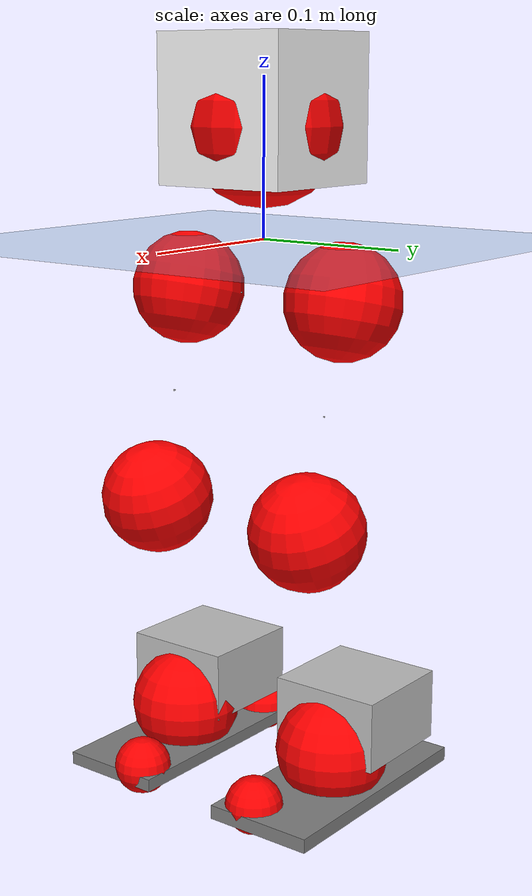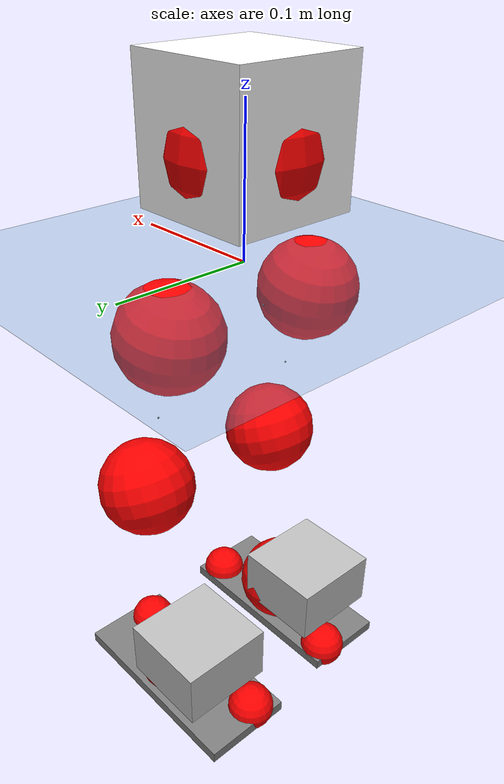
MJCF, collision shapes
<mujoco model="pi_12dof_release_v1">
  <compiler angle="radian" assetdir="assets" balanceinertia="true" inertiafromgeom="false"/>

  <option timestep="0.005" density="1.2" viscosity="2e-05"/>

  <size nkey="1"/>

  <visual>
    <quality shadowsize="8192"/>
    <map shadowclip="0.5"/>
  </visual>

  <default>
    <default class="/">
      <joint armature="0.01" damping="0.01" frictionloss="0.01"/>
      <geom contype="0" conaffinity="0" group="1" solref="-1000 -80"/>
      <site size="0.01 0.005 0.005" group="5"/>
      <general forcelimited="true" biastype="affine" gainprm="20" biasprm="0 -20 -0.5"/>
      <default class="foot">
        <geom size="0.0845 0.036 0.005" type="box" condim="6" group="4" priority="1" friction="0.9 0.2 0.2" solimp="0.015 1 0.005"/>
      </default>
      <default class="reward_collision_sphere">
        <geom group="5" rgba="1 0 0 1"/>
      </default>
    </default>
  </default>

  <asset>
    <texture type="skybox" colorspace="auto" name="//unnamed_texture_0" builtin="gradient" rgb1="0.95 0.95 0.95" rgb2="0.95 0.95 0.95" width="100" height="600"/>
    <texture type="2d" colorspace="auto" name="texplane" builtin="checker" rgb1="0.345 0.575 0.748" rgb2="0.345 0.575 0.748" markrgb="1 1 1" width="512" height="512"/>
    <material name="MatPlane" class="/" texture="texplane" texuniform="true" texrepeat="2 2" specular="0.9"/>
    <mesh name="baselink_1" class="/" file="baselink_1.STL"/>
    <mesh name="r_hip_pitch_link" class="/" file="r_hip_pitch_link.STL"/>
    <mesh name="r_hip_roll_link" class="/" file="r_hip_roll_link.STL"/>
    <mesh name="r_thigh_link" class="/" file="r_thigh_link.STL"/>
    <mesh name="r_calf_link" class="/" file="r_calf_link.STL"/>
    <mesh name="r_ankle_pitch_link" class="/" file="r_ankle_pitch_link.STL"/>
    <mesh name="r_ankle_roll_link" class="/" file="r_ankle_roll_link.STL"/>
    <mesh name="l_hip_pitch_link" class="/" file="l_hip_pitch_link.STL"/>
    <mesh name="l_hip_roll_link" class="/" file="l_hip_roll_link.STL"/>
    <mesh name="l_thigh_link" class="/" file="l_thigh_link.STL"/>
    <mesh name="l_calf_link" class="/" file="l_calf_link.STL"/>
    <mesh name="l_ankle_pitch_link" class="/" file="l_ankle_pitch_link.STL"/>
    <mesh name="l_ankle_roll_link" class="/" file="l_ankle_roll_link.STL"/>
  </asset>

  <worldbody>
    <geom name="floor" class="/" size="100 100 0.125" type="plane" group="0" material="MatPlane"/>
    <light name="toplight_shadow" class="/" pos="0 0 5" dir="0.0990148 0.0990148 -0.990148" type="directional" ambient="0.04 0.04 0.04" diffuse="0.55 0.55 0.55" specular="0.12 0.12 0.12"/>
    <light name="toplight_fill" class="/" pos="0 0 5" dir="0.0990148 0.0990148 -0.990148" type="directional" castshadow="false" ambient="0.04 0.04 0.04" diffuse="0.3 0.3 0.3" specular="0.08 0.08 0.08"/>
    <body name="trunk" pos="0.000117082 -1.47334e-05 -0.000851711" quat="1 8.40116e-06 -2.32479e-05 -4.12408e-05">
      <inertial pos="0.00272932 0.00174171 0.0422929" quat="0.695379 0.00975592 0.00939286 0.718516" mass="1.69441" diaginertia="0.008226 0.00286109 0.00445248"/>
      <joint name="//unnamed_joint_0" type="free"/>
      <geom name="//unnamed_geom_1" class="/" type="mesh" density="0" rgba="1 1 1 1" mesh="baselink_1"/>
      <geom name="//unnamed_geom_2" class="/" size="0.0460926 0.0460926 0.0460926" pos="0 0 0.0810259" type="box" rgba="1 1 1 1"/>
      <geom name="//unnamed_geom_3" class="reward_collision_sphere" size="0.0507018" pos="0 0 0.0708976"/>
      <site name="imu" class="/" pos="-0.00521198 0.00109563 -0.0050088" size="0.00921851"/>
      <camera name="track" class="/" pos="0 -1.5855 0" quat="0.707107 0.707107 0 0" mode="trackcom"/>
      <camera name="ego_camera" class="/" pos="0.0719985 0 0.182308" quat="-0.5 -0.5 0.5 0.5"/>
      <body name="r_hip_pitch_link" pos="-0.00033615 -0.0179612 -0.0343407" quat="0.992149 9.43639e-05 -0.125063 -0.000254116">
        <inertial pos="-0.000754597 -0.0447505 0.000686516" quat="-0.0190663 0.706031 -0.0279219 0.707374" mass="0.296732" diaginertia="8.96155e-05 3.12105e-05 8.95373e-05"/>
        <joint name="r_hip_pitch_joint" class="/" pos="0 0 0" axis="-0.0126263 -0.999907 -0.00510537" stiffness="0.00142718" range="-1.75506 1.23731" armature="0.00926792" damping="0.0104469" frictionloss="0.00869285"/>
        <geom name="//unnamed_geom_4" class="/" type="mesh" density="0" rgba="0.75294 0.75294 0.75294 1" mesh="r_hip_pitch_link"/>
        <geom name="//unnamed_geom_5" class="/" size="0.000460926 0.000460926 0.000460926" type="box" rgba="0.75294 0.75294 0.75294 1"/>
        <body name="r_hip_roll_link" pos="0.000498545 -0.0440401 -0.000150072" quat="1 -5.59797e-05 -4.55385e-05 -5.86575e-05">
          <inertial pos="-0.00121849 -0.000738231 -0.0624202" quat="0.706222 -0.0797005 -0.0837902 0.698482" mass="0.293662" diaginertia="0.000273156 8.63174e-05 0.000129358"/>
          <joint name="r_hip_roll_joint" class="/" pos="0 0 0" axis="-0.999978 0.00254523 0.00618389" range="-0.1212 0.487462" armature="0.00924186" damping="0.00662994" frictionloss="0.00917141"/>
          <geom name="//unnamed_geom_6" class="/" type="mesh" density="0" rgba="0.75294 0.75294 0.75294 1" mesh="r_hip_roll_link"/>
          <geom name="//unnamed_geom_7" class="/" size="0.000460926 0.000460926 0.000460926" type="box" rgba="0.75294 0.75294 0.75294 1"/>
          <geom name="//unnamed_geom_8" class="reward_collision_sphere" size="0.0368741"/>
          <body name="r_thigh_link" pos="0.000491709 0.001638 -0.0684611" quat="0.999999 -0.00090473 -0.000537842 -0.000100401">
            <inertial pos="0.000653553 0.000828276 -0.0481878" quat="0.737592 0.675247 0.00019076 0.000144723" mass="0.0882115" diaginertia="0.000102027 2.8994e-05 6.13064e-05"/>
            <joint name="r_thigh_joint" class="/" pos="0 0 0" axis="0.000348542 -0.000991149 -0.999999" range="-0.300011 0.574295" armature="0.00995421" damping="0.00280057" frictionloss="0.0090789"/>
            <geom name="//unnamed_geom_9" class="/" type="mesh" density="0" rgba="0.75294 0.75294 0.75294 1" mesh="r_thigh_link"/>
            <geom name="//unnamed_geom_10" class="/" size="0.000460926 0.000460926 0.000460926" type="box" rgba="0.75294 0.75294 0.75294 1"/>
            <body name="r_calf_link" pos="-0.000874902 -0.00109785 -0.0708123" quat="0.947775 -0.000103536 0.318938 0.00070153">
              <inertial pos="-0.000684234 -0.0014386 -0.0702743" quat="0.999979 -0.00324399 -0.000310941 0.00558022" mass="0.613254" diaginertia="0.00277847 0.00107473 0.000185993"/>
              <joint name="r_calf_joint" class="/" pos="0 0 0" axis="0.00314079 -0.999929 0.0114642" stiffness="0.00381806" range="-1.63427 0.651703" armature="0.00913021" damping="0.00621958" frictionloss="0.00966966"/>
              <geom name="//unnamed_geom_11" class="/" type="mesh" density="0" rgba="0.75294 0.75294 0.75294 1" mesh="r_calf_link"/>
              <geom name="//unnamed_geom_12" class="/" size="0.000460926 0.000460926 0.000460926" type="box" rgba="0.75294 0.75294 0.75294 1"/>
              <geom name="//unnamed_geom_13" class="reward_collision_sphere" size="0.0368741"/>
              <body name="r_ankle_pitch_link" pos="0.00324637 0.00080898 -0.141809" quat="0.980081 0.000387784 -0.198598 -0.000358676">
                <inertial pos="0.00447742 0.00288452 -0.000260536" quat="0.00223738 0.707364 -0.00218422 0.706843" mass="0.143066" diaginertia="0.000251609 7.23601e-05 0.000131023"/>
                <joint name="r_ankle_pitch_joint" class="/" pos="0 0 0" axis="-0.000634602 -0.999988 0.00494321" range="-1.30642 0.486236" armature="0.00934586" damping="0.0202584" frictionloss="0.0100223"/>
                <geom name="//unnamed_geom_14" class="/" type="mesh" density="0" rgba="0.75294 0.75294 0.75294 1" mesh="r_ankle_pitch_link"/>
                <geom name="//unnamed_geom_15" class="/" size="0.0359522 0.0368741 0.0230463" type="box" rgba="0.75294 0.75294 0.75294 1"/>
                <body name="r_ankle_roll_link" pos="0.0758262 0.00147968 0.000171861" quat="1 4.3424e-06 9.31645e-05 -3.59939e-05">
                  <inertial pos="-0.0220835 0.000718394 -0.0122639" quat="0.558556 0.434426 0.431282 0.559719" mass="0.393356" diaginertia="0.000923063 0.000323024 0.000302153"/>
                  <joint name="r_ankle_roll_joint" class="/" pos="0 0 0" axis="-1 0.000179057 -0.000323956" range="-0.143416 0.152999" armature="0.0091636" damping="0.00718739" frictionloss="0.0103708"/>
                  <geom name="//unnamed_geom_16" class="/" type="mesh" density="0" rgba="0.75294 0.75294 0.75294 1" mesh="r_ankle_roll_link"/>
                  <geom name="//unnamed_geom_17" class="/" type="mesh" rgba="0.75294 0.75294 0.75294 1" mesh="r_ankle_roll_link"/>
                  <geom name="right_foot" class="foot" size="0.0782915 0.0340636 0.00417545" pos="-0.048959 0 -0.0445642"/>
                  <geom name="//unnamed_geom_19" class="reward_collision_sphere" size="0.0368741" pos="-0.047999 0 -0.0202565"/>
                  <geom name="//unnamed_geom_20" class="reward_collision_sphere" size="0.018437" pos="0.0143997 0.015855 -0.0405129"/>
                  <geom name="//unnamed_geom_21" class="reward_collision_sphere" size="0.018437" pos="-0.115198 0.015855 -0.0405129"/>
                  <site name="right_foot" class="foot" pos="-0.048959 0 -0.0445642" size="0.00921851"/>
                </body>
              </body>
            </body>
          </body>
        </body>
      </body>
      <body name="l_hip_pitch_link" pos="0.000873383 0.019468 -0.0333211" quat="0.992176 1.76021e-05 -0.124844 0.000128463">
        <inertial pos="0.00148982 0.0407479 -0.00076841" quat="-0.0418185 0.707864 0.0413904 0.703894" mass="0.295744" diaginertia="0.000103346 3.31218e-05 0.000108461"/>
        <joint name="l_hip_pitch_joint" class="/" pos="0 0 0" axis="0.00152083 0.999996 0.00221608" range="-1.21842 1.70996" armature="0.00928688" damping="0.00828716" frictionloss="0.00845364"/>
        <geom name="//unnamed_geom_22" class="/" type="mesh" density="0" rgba="0.75294 0.75294 0.75294 1" mesh="l_hip_pitch_link"/>
        <geom name="//unnamed_geom_23" class="/" size="0.000460926 0.000460926 0.000460926" type="box" rgba="0.75294 0.75294 0.75294 1"/>
        <body name="l_hip_roll_link" pos="7.45922e-06 0.0424674 -1.38056e-05" quat="1 0.000228548 -0.000130995 0.000244521">
          <inertial pos="-0.00094306 -0.000777635 -0.0615565" quat="0.697824 -0.0710134 -0.0786008 0.708393" mass="0.30698" diaginertia="0.000280145 8.95423e-05 0.000139806"/>
          <joint name="l_hip_roll_joint" class="/" pos="0 0 0" axis="-0.999983 0.00100846 -0.00566738" range="-0.449848 0.071751" armature="0.00896794" damping="0.00232851" frictionloss="0.00944515"/>
          <geom name="//unnamed_geom_24" class="/" type="mesh" density="0" rgba="0.75294 0.75294 0.75294 1" mesh="l_hip_roll_link"/>
          <geom name="//unnamed_geom_25" class="/" size="0.000460926 0.000460926 0.000460926" type="box" rgba="0.75294 0.75294 0.75294 1"/>
          <geom name="//unnamed_geom_26" class="reward_collision_sphere" size="0.0368741"/>
          <body name="l_thigh_link" pos="0.000761393 -0.000650791 -0.0704275" quat="1 0.00029283 -1.58561e-05 0.000803226">
            <inertial pos="0.00187791 -0.000359416 -0.0491299" quat="0.675411 0.737441 0.000257114 -3.29681e-05" mass="0.0888842" diaginertia="0.000106515 3.14041e-05 6.57514e-05"/>
            <joint name="l_thigh_joint" class="/" pos="0 0 0" axis="0.0028262 -0.00329142 -0.999991" range="-0.618677 0.262446" armature="0.00953612" damping="0.0115757" frictionloss="0.00881749"/>
            <geom name="//unnamed_geom_27" class="/" type="mesh" density="0" rgba="0.75294 0.75294 0.75294 1" mesh="l_thigh_link"/>
            <geom name="//unnamed_geom_28" class="/" size="0.000460926 0.000460926 0.000460926" type="box" rgba="0.75294 0.75294 0.75294 1"/>
            <body name="l_calf_link" pos="0.0006312 0.00124361 -0.0713211" quat="0.947778 -0.000516793 0.31893 0.000680005">
              <inertial pos="0.000234737 0.00177286 -0.070612" quat="0.999862 0.00242233 0.00801876 0.0143536" mass="0.641104" diaginertia="0.00286283 0.0010965 0.000185186"/>
              <joint name="l_calf_joint" class="/" pos="0 0 0" axis="0.000841267 1 -0.000300911" range="-0.663916 1.66451" armature="0.00933407" damping="0.00341045" frictionloss="0.0090548"/>
              <geom name="//unnamed_geom_29" class="/" type="mesh" density="0" rgba="0.75294 0.75294 0.75294 1" mesh="l_calf_link"/>
              <geom name="//unnamed_geom_30" class="/" size="0.000460926 0.000460926 0.000460926" type="box" rgba="0.75294 0.75294 0.75294 1"/>
              <geom name="//unnamed_geom_31" class="reward_collision_sphere" size="0.0368741"/>
              <body name="l_ankle_pitch_link" pos="0.000715735 -0.000182103 -0.144237" quat="0.98006 -5.50802e-05 -0.198701 -8.92741e-05">
                <inertial pos="0.00468334 0.00181625 -0.000347709" quat="0.00301043 0.709981 0.000707628 0.704214" mass="0.133076" diaginertia="0.000241402 6.7337e-05 0.000122835"/>
                <joint name="l_ankle_pitch_joint" class="/" pos="0 0 0" axis="-0.00166492 0.999931 0.0116315" range="-0.501008 1.29582" armature="0.00911122" damping="0" frictionloss="0.00954805"/>
                <geom name="//unnamed_geom_32" class="/" type="mesh" density="0" rgba="0.75294 0.75294 0.75294 1" mesh="l_ankle_pitch_link"/>
                <geom name="//unnamed_geom_33" class="/" size="0.0359522 0.0368741 0.0230463" type="box" rgba="0.75294 0.75294 0.75294 1"/>
                <body name="l_ankle_roll_link" pos="0.0716329 -0.00121857 -0.000336466" quat="1 -0.000296679 -0.000150637 0.000477053">
                  <inertial pos="-0.0244189 -0.000878782 -0.014879" quat="0.556606 0.422489 0.436406 0.566783" mass="0.398026" diaginertia="0.000923979 0.000329001 0.000313408"/>
                  <joint name="l_ankle_roll_joint" class="/" pos="0 0 0" axis="-0.999915 0.0103482 0.00793138" range="-0.15583 0.100959" armature="0.00931318" damping="0.00905912" frictionloss="0.00805153"/>
                  <geom name="//unnamed_geom_34" class="/" type="mesh" density="0" rgba="0.75294 0.75294 0.75294 1" mesh="l_ankle_roll_link"/>
                  <geom name="//unnamed_geom_35" class="/" type="mesh" rgba="0.75294 0.75294 0.75294 1" mesh="l_ankle_roll_link"/>
                  <geom name="left_foot" class="foot" size="0.0811805 0.0360009 0.00455451" pos="-0.048959 0 -0.0445642"/>
                  <geom name="//unnamed_geom_37" class="reward_collision_sphere" size="0.0368741" pos="-0.047999 0 -0.0202565"/>
                  <geom name="//unnamed_geom_38" class="reward_collision_sphere" size="0.018437" pos="0.0143997 -0.015855 -0.0405129"/>
                  <geom name="//unnamed_geom_39" class="reward_collision_sphere" size="0.018437" pos="-0.115198 -0.015855 -0.0405129"/>
                  <site name="left_foot" class="foot" pos="-0.048959 0 -0.0445642" size="0.00921851"/>
                </body>
              </body>
            </body>
          </body>
        </body>
      </body>
    </body>
  </worldbody>

  <contact>
    <pair class="/" geom1="floor" geom2="right_foot" name="//unnamed_contact_1"/>
    <pair class="/" geom1="floor" geom2="left_foot" name="//unnamed_contact_0"/>
  </contact>

  <actuator>
    <general name="r_hip_pitch_joint" class="/" joint="r_hip_pitch_joint" forcerange="-18.7871 18.7871" gainprm="18.929" biasprm="0 -18.929 -0.448036"/>
    <general name="r_hip_roll_joint" class="/" joint="r_hip_roll_joint" forcerange="-19.3779 19.3779" gainprm="18.929" biasprm="0 -18.929 -0.448036"/>
    <general name="r_thigh_joint" class="/" joint="r_thigh_joint" forcerange="-19.2841 19.2841" gainprm="18.929" biasprm="0 -18.929 -0.448036"/>
    <general name="r_calf_joint" class="/" joint="r_calf_joint" forcerange="-18.5777 18.5777" gainprm="18.929" biasprm="0 -18.929 -0.448036"/>
    <general name="r_ankle_pitch_joint" class="/" joint="r_ankle_pitch_joint" forcerange="-19.5853 19.5853" gainprm="18.929" biasprm="0 -18.929 -0.448036"/>
    <general name="r_ankle_roll_joint" class="/" joint="r_ankle_roll_joint" forcerange="-20.8644 20.8644" gainprm="18.929" biasprm="0 -18.929 -0.448036"/>
    <general name="l_hip_pitch_joint" class="/" joint="l_hip_pitch_joint" forcerange="-19.5404 19.5404" gainprm="18.929" biasprm="0 -18.929 -0.448036"/>
    <general name="l_hip_roll_joint" class="/" joint="l_hip_roll_joint" forcerange="-17.5443 17.5443" gainprm="18.929" biasprm="0 -18.929 -0.448036"/>
    <general name="l_thigh_joint" class="/" joint="l_thigh_joint" forcerange="-18.7316 18.7316" gainprm="18.929" biasprm="0 -18.929 -0.448036"/>
    <general name="l_calf_joint" class="/" joint="l_calf_joint" forcerange="-20.0832 20.0832" gainprm="18.929" biasprm="0 -18.929 -0.448036"/>
    <general name="l_ankle_pitch_joint" class="/" joint="l_ankle_pitch_joint" forcerange="-18.5868 18.5868" gainprm="18.929" biasprm="0 -18.929 -0.448036"/>
    <general name="l_ankle_roll_joint" class="/" joint="l_ankle_roll_joint" forcerange="-19.8145 19.8145" gainprm="18.929" biasprm="0 -18.929 -0.448036"/>
  </actuator>

  <sensor>
    <gyro site="imu" name="imu_angular_velocity"/>
    <velocimeter site="imu" name="imu_linear_velocity"/>
    <framelinvel objtype="site" objname="left_foot" name="left_foot_global_linear_velocity"/>
    <framelinvel objtype="site" objname="right_foot" name="right_foot_global_linear_velocity"/>
  </sensor>

  <keyframe>
    <key name="home" qpos="0 0 0.291 1 0 0 0 0.4 0 0 -0.8 0.4 0 -0.4 0 0 0.8 -0.4 0"/>
  </keyframe>
</mujoco>
